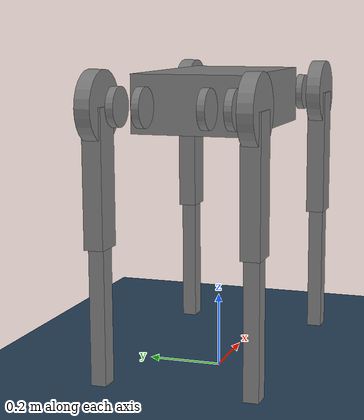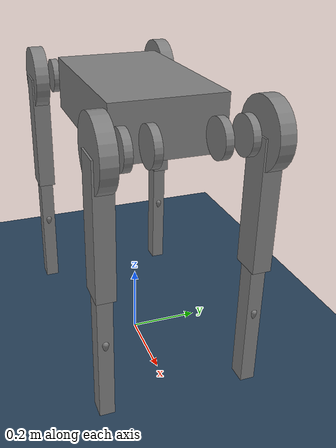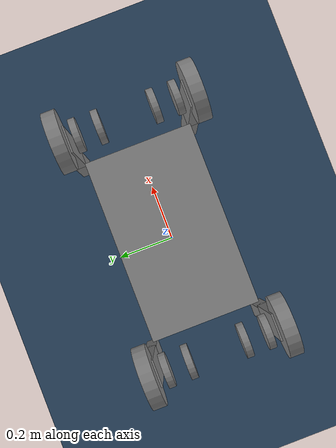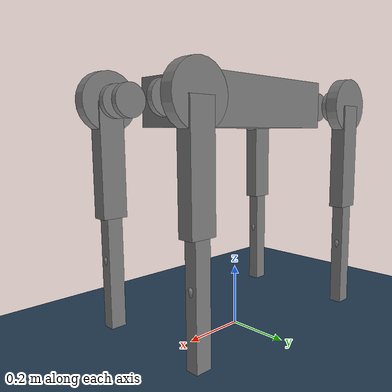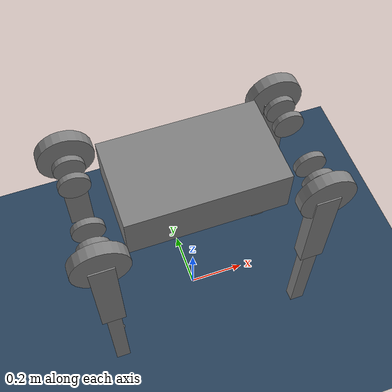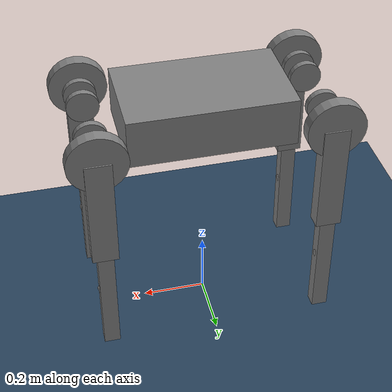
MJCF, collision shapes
<mujoco model="unitree b1 scene">

    <include file="b1.xml" />

    <statistic center="0.5 0 0.7" extent="1.3" />

    <visual>
        <headlight diffuse="0.6 0.6 0.6" ambient="0.1 0.1 0.1" specular="0 0 0" />
        <rgba haze="0.15 0.25 0.35 1" />
        <global azimuth="160" elevation="-10" />
    </visual>

    <asset>
        <texture type="skybox" builtin="gradient" rgb1="0.3 0.5 0.7" rgb2="0 0 0" width="512"
            height="3072" />
        <texture type="2d" name="groundplane" builtin="checker" mark="edge" rgb1="0.2 0.3 0.4"
            rgb2="0.1 0.2 0.3"
            markrgb="0.8 0.8 0.8" width="300" height="300" />
        <material name="groundplane" texture="groundplane" texuniform="true" texrepeat="5 5"
            reflectance="0.2" />
    </asset>

    <worldbody>
        <light pos="0 0 1.5" dir="0 0 -1" directional="true" />
        <geom name="floor" size="0 0 0.05" type="plane" material="groundplane" />
    </worldbody>

</mujoco>

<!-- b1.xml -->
<mujoco model="b1">
  <compiler angle="radian" autolimits="true" meshdir="meshes" />
  <statistic meansize="0.278245" extent="1.36353" center="4.68679e-05 0.000420435 -0.142055" />
  <asset>
    <material name="dark" specular="0" shininess="0.25" rgba="0.2 0.2 0.2 1" />

    <mesh name="trunk" file="trunk.stl" />
    <mesh name="hip" file="hip.stl" />
    <mesh name="thigh_mirror" file="thigh_mirror.stl" />
    <mesh name="calf" file="calf.stl" />
    <mesh name="thigh" file="thigh.stl" />
  </asset>

  <option cone="elliptic" impratio="100" />

  <default>
    <default class="b1">
      <geom friction="0.6" margin="0.001" />
      <joint damping="2" armature="0.01" frictionloss="0.2" />
      <!-- TODO: ctrlrange defines torques limits that we can put on each motor, probably it does
      not correlate with unitree B1 docs -->
      <motor ctrlrange="-20 20" />
      <default class="hip_joint">
        <joint range="-0.75 0.75" axis="1 0 0" pos="0 0 0" />
      </default>
      <default class="thigh_joint">
        <joint range="-1 3.5" axis="0 1 0" pos="0 0 0" />
      </default>
      <default class="calf_joint">
        <joint pos="0 0 0" axis="0 1 0" range="-2.6 -0.6" />
      </default>
      <default class="visual">
        <geom type="mesh" contype="0" conaffinity="0" group="2" material="dark" />
      </default>
      <default class="collision">
        <geom group="3" type="capsule" />
        <default class="hip_right1">
          <geom size="0.09 0.02" pos="0 -0.12675 0" quat="0.707107 0.707107 0 0" type="cylinder" />
        </default>
        <default class="hip_right2">
          <geom size="0.05 0.01" pos="0 -0.00935 0" quat="0.707107 0.707107 0 0" type="cylinder" />
        </default>
        <default class="hip_left1">
          <geom size="0.09 0.02" pos="0 0.12675 0" quat="0.707107 0.707107 0 0" type="cylinder" />
        </default>
        <default class="hip_left2">
          <geom size="0.05 0.01" pos="0 0.00935 0" quat="0.707107 0.707107 0 0" type="cylinder" />
        </default>
        <default class="thigh_right1">
          <geom size="0.175 0.025 0.04" pos="0 0 -0.175" quat="0.707107 0 0.707107 0" type="box" />
        </default>
        <default class="thigh_right2">
          <geom size="0.05 0.01" pos="0 0.0519 0" quat="0.707107 0.707107 0 0" type="cylinder" />
        </default>
        <default class="thigh_left1">
          <geom size="0.175 0.025 0.04" pos="0 0 -0.175" quat="0.707107 0 0.707107 0" type="box" />
        </default>
        <default class="thigh_left2">
          <geom size="0.05 0.01" pos="0 -0.0519 0" quat="0.707107 0.707107 0 0" type="cylinder" />
        </default>
        <default class="calf1">
          <geom size="0.175 0.02 0.025" pos="0 0 -0.175" quat="0.707107 0 0.707107 0" type="box" />
        </default>
        <default class="calf2">
          <geom size="0.01" fromto="0.02 0 -0.13 0 0 -0.2" />
        </default>
        <default class="foot">
          <geom type="sphere" size="0.02" pos="0 0 -0.2" priority="1" solimp="0.015 1 0.031"
            condim="6"
            friction="0.8 0.02 0.01" />
        </default>
      </default>
    </default>
  </default>

  <worldbody>
    <body name="trunk" pos="0 0 0.74">
      <joint name="world_joint_TX" pos="0 0 0" axis="1 0 0" type="slide"/>
      <joint name="world_joint_TY" pos="0 0 0" axis="0 0 -1" type="slide"/>
      <joint name="world_joint_RZ" pos="0 0 0" axis="0 1 0"/>
      <geom class="visual" mesh="trunk" />
      <geom class="collision" size="0.2535 0.15 0.075" type="box" />
      <geom class="collision" size="0.05 0.01" pos="0.1955 -0.072 0" quat="0.707107 0 0.707107 0"
        type="cylinder" />
      <geom class="collision" size="0.05 0.01" pos="0.1955 0.072 0" quat="0.707107 0 0.707107 0"
        type="cylinder" />
      <geom class="collision" size="0.05 0.01" pos="-0.1955 -0.072 0" quat="0.707107 0 0.707107 0"
        type="cylinder" />
      <geom class="collision" size="0.05 0.01" pos="-0.1955 0.072 0" quat="0.707107 0 0.707107 0"
        type="cylinder" />
      <body name="FR_hip" pos="0.3455 -0.072 0">
        <inertial pos="-0.018016 -0.00971213 9.67456e-05" quat="0.514022 0.512801 0.485949 0.486488"
          mass="2.366" diaginertia="0.00980696 0.00664332 0.0045362" />
        <geom class="visual" mesh="hip" />
        <geom class="hip_right1" />
        <geom class="hip_right2" />
        <body name="FR_thigh"
          pos="0 -0.12675 0">
          <inertial pos="-0.000220117 0.0301731 -0.0507383"
            quat="0.736596 -0.0378368 0.076521 0.670924" mass="4.2"
            diaginertia="0.0487177 0.0459334 0.00814802" />
          <joint class="thigh_joint" name="FR_thigh_joint" />
          <geom class="visual" mesh="thigh_mirror" />
          <geom class="thigh_right1" />
          <geom class="thigh_right2" />
          <body name="FR_calf" pos="0 0 -0.35">
            <inertial pos="0.0049483 0 -0.210919" quat="0.707231 -0.00481122 -0.00483372 0.70695"
              mass="0.907" diaginertia="0.0162164 0.0160695 0.000406131" />
            <joint class="calf_joint" name="FR_calf_joint" />
            <geom class="visual" mesh="calf" />
            <geom class="calf1" />
            <geom class="calf2" />
            <geom class="foot" />
          </body>
        </body>
      </body>
      <body name="FL_hip" pos="0.3455 0.072 0">
        <inertial pos="-0.018016 0.00971213 9.67456e-05" quat="0.486488 0.485949 0.512801 0.514022"
          mass="2.366" diaginertia="0.00980696 0.00664332 0.0045362" />
        <geom class="visual" mesh="hip" />
        <geom class="hip_left1" />
        <geom class="hip_left2" />
        <body name="FL_thigh" pos="0 0.12675 0">
          <inertial pos="-0.000220117 -0.0301731 -0.0507383"
            quat="0.670924 0.076521 -0.0378368 0.736596" mass="4.2"
            diaginertia="0.0487177 0.0459334 0.00814802" />
          <joint class="thigh_joint" name="FL_thigh_joint" />
          <geom class="visual" mesh="thigh" />
          <geom class="thigh_left1" />
          <geom class="thigh_left2" />
          <body name="FL_calf" pos="0 0 -0.35">
            <inertial pos="0.0049483 0 -0.210919" quat="0.707231 -0.00481122 -0.00483372 0.70695"
              mass="0.907" diaginertia="0.0162164 0.0160695 0.000406131" />
            <joint class="calf_joint" name="FL_calf_joint" />
            <geom class="visual" mesh="calf" />
            <geom class="calf1" />
            <geom class="calf2" />
            <geom class="foot" />
          </body>
        </body>
      </body>
      <body name="RR_hip" pos="-0.3455 -0.072 0">
        <inertial pos="0.018016 -0.00971213 9.67456e-05" quat="0.485949 0.486488 0.514022 0.512801"
          mass="2.366" diaginertia="0.00980696 0.00664332 0.0045362" />
        <geom class="visual" mesh="hip" />
        <geom class="hip_right1" />
        <geom class="hip_right2" />
        <body name="RR_thigh" pos="0 -0.12675 0">
          <inertial pos="-0.000220117 0.0301731 -0.0507383"
            quat="0.736596 -0.0378368 0.076521 0.670924" mass="4.2"
            diaginertia="0.0487177 0.0459334 0.00814802" />
          <joint class="thigh_joint" name="RR_thigh_joint" />
          <geom class="visual" mesh="thigh_mirror" />
          <geom class="thigh_right1" />
          <geom class="thigh_right2" />
          <body name="RR_calf" pos="0 0 -0.35">
            <inertial pos="0.0049483 0 -0.210919" quat="0.707231 -0.00481122 -0.00483372 0.70695"
              mass="0.907" diaginertia="0.0162164 0.0160695 0.000406131" />
            <joint class="calf_joint" name="RR_calf_joint" />
            <geom class="visual" mesh="calf" />
            <geom class="calf1" />
            <geom class="calf2" />
            <geom class="foot" />
          </body>
        </body>
      </body>
      <body name="RL_hip" pos="-0.3455 0.072 0">
        <inertial pos="0.018016 0.00971213 9.67456e-05" quat="0.512801 0.514022 0.486488 0.485949"
          mass="2.366" diaginertia="0.00980696 0.00664332 0.0045362" />
        <geom class="visual" mesh="hip" />
        <geom class="hip_left1" />
        <geom class="hip_left2" />
        <body name="RL_thigh" pos="0 0.12675 0">
          <inertial pos="-0.000220117 -0.0301731 -0.0507383"
            quat="0.670924 0.076521 -0.0378368 0.736596" mass="4.2"
            diaginertia="0.0487177 0.0459334 0.00814802" />
          <joint class="thigh_joint" name="RL_thigh_joint" />
          <geom class="visual" mesh="thigh" />
          <geom class="thigh_left1" />
          <geom class="thigh_left2" />
          <body name="RL_calf" pos="0 0 -0.35">
            <inertial pos="0.0049483 0 -0.210919" quat="0.707231 -0.00481122 -0.00483372 0.70695"
              mass="0.907" diaginertia="0.0162164 0.0160695 0.000406131" />
            <joint class="calf_joint" name="RL_calf_joint" />
            <geom class="visual" mesh="calf" />
            <geom class="calf1" />
            <geom class="calf2" />
            <geom class="foot" />
          </body>
        </body>
      </body>
    </body>
  </worldbody>

  <actuator>
    <motor class="thigh_joint" name="FR_thigh_motor" joint="FR_thigh_joint" />
    <motor class="calf_joint" name="FR_calf_motor" joint="FR_calf_joint" />
    <motor class="thigh_joint" name="FL_thigh_motor" joint="FL_thigh_joint" />
    <motor class="calf_joint" name="FL_calf_motor" joint="FL_calf_joint" />
    <motor class="thigh_joint" name="RR_thigh_motor" joint="RR_thigh_joint" />
    <motor class="calf_joint" name="RR_calf_motor" joint="RR_calf_joint" />
    <motor class="thigh_joint" name="RL_thigh_motor" joint="RL_thigh_joint" />
    <motor class="calf_joint" name="RL_calf_motor" joint="RL_calf_joint" />
  </actuator>
</mujoco>
